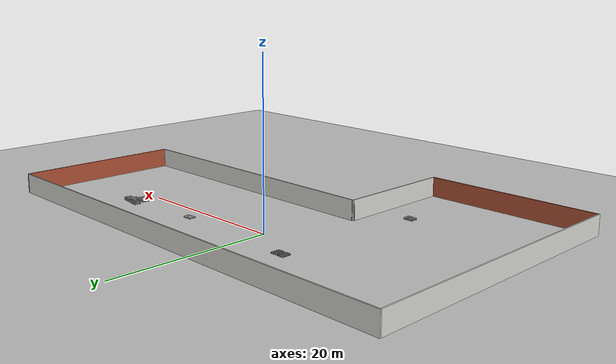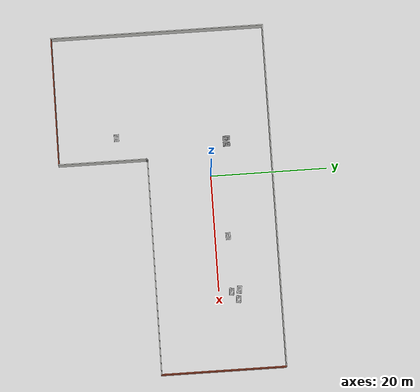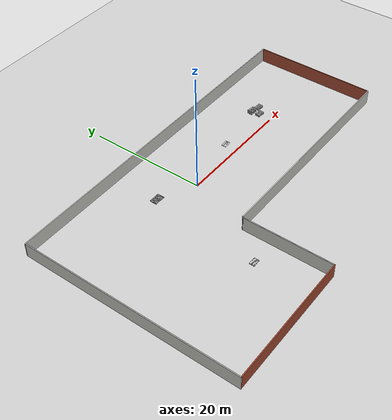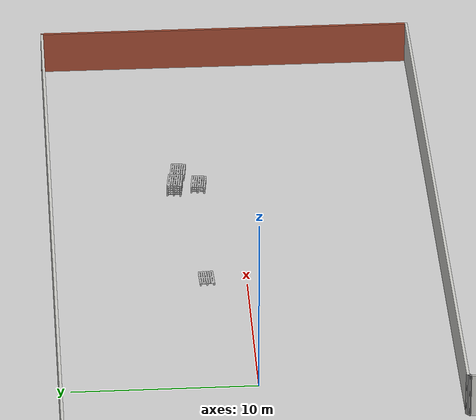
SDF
<sdf version="1.7">
 <world name="default">
  <light name="sun" type="directional">
   <pose>0 0 10 0 -0 0</pose>
   <diffuse>0.8 0.8 0.8 1</diffuse>
   <specular>0.2 0.2 0.2 1</specular>
   <attenuation>
    <range>1000</range>
    <constant>0.9</constant>
    <linear>0.01</linear>
    <quadratic>0.001</quadratic>
   </attenuation>
   <direction>-0.5 0.1 -0.9</direction>
   <spot><inner_angle>0</inner_angle><outer_angle>0</outer_angle><falloff>0</falloff></spot>
  </light>
  <model name="ground_plane">
   <static>1</static>
   <link name="link">
    <collision name="collision">
     <geometry><plane><normal>0 0 1</normal><size>100 100</size></plane></geometry>
     <surface><friction><ode><mu>100</mu><mu2>50</mu2></ode></friction></surface>
    </collision>
    <visual name="visual">
     <cast_shadows>0</cast_shadows>
     <geometry><plane><normal>0 0 1</normal><size>100 100</size></plane></geometry>
     <material>
      <script><uri>file://media/materials/scripts/gazebo.material</uri><name>Gazebo/Grey</name></script>
     </material>
    </visual>
   </link>
  </model>
  <gravity>0 0 -9.8</gravity>
  <magnetic_field>6e-06 2.3e-05 -4.2e-05</magnetic_field>
  <atmosphere type="adiabatic"/>
  <physics type="ode">
   <max_step_size>0.001</max_step_size>
   <real_time_factor>1</real_time_factor>
   <real_time_update_rate>1000</real_time_update_rate>
  </physics>
  <scene><ambient>0.4 0.4 0.4 1</ambient><background>0.7 0.7 0.7 1</background><shadows>1</shadows></scene>
  <audio><device>default</device></audio>
  <spherical_coordinates>
   <surface_model>EARTH_WGS84</surface_model>
   <latitude_deg>0</latitude_deg>
   <longitude_deg>0</longitude_deg>
   <elevation>0</elevation>
   <heading_deg>0</heading_deg>
  </spherical_coordinates>
  <model name="Versuchshalle">
   <pose>4.1658 -7.7147 0 0 -0 0</pose>
   <link name="Wall_41">
    <collision name="Wall_41_Collision">
     <geometry><box><size>37.25 0.15 2.5</size></box></geometry>
     <pose>0 0 1.25 0 -0 0</pose>
    </collision>
    <visual name="Wall_41_Visual">
     <pose>0 0 1.25 0 -0 0</pose>
     <geometry><box><size>37.25 0.15 2.5</size></box></geometry>
     <material>
      <script><uri>file://media/materials/scripts/gazebo.material</uri><name>Gazebo/CeilingTiled</name></script>
      <ambient>1 1 1 1</ambient>
     </material>
     <meta><layer>0</layer></meta>
    </visual>
    <pose>11.125 -3.05 0 0 -0 0</pose>
   </link>
   <link name="Wall_42">
    <collision name="Wall_42_Collision">
     <geometry><box><size>21.5 0.15 2.5</size></box></geometry>
     <pose>0 0 1.25 0 -0 0</pose>
    </collision>
    <visual name="Wall_42_Visual">
     <pose>0 0 1.25 0 -0 0</pose>
     <geometry><box><size>21.5 0.15 2.5</size></box></geometry>
     <material>
      <script><uri>file://media/materials/scripts/gazebo.material</uri><name>Gazebo/Bricks</name></script>
      <ambient>1 1 1 1</ambient>
     </material>
     <meta><layer>0</layer></meta>
    </visual>
    <pose>29.675 7.625 0 0 -0 1.5708</pose>
   </link>
   <link name="Wall_43">
    <collision name="Wall_43_Collision">
     <geometry><box><size>59.5 0.15 2.5</size></box></geometry>
     <pose>0 0 1.25 0 -0 0</pose>
    </collision>
    <visual name="Wall_43_Visual">
     <pose>0 0 1.25 0 -0 0</pose>
     <geometry><box><size>59.5 0.15 2.5</size></box></geometry>
     <material>
      <script><uri>file://media/materials/scripts/gazebo.material</uri><name>Gazebo/CeilingTiled</name></script>
      <ambient>1 1 1 1</ambient>
     </material>
     <meta><layer>0</layer></meta>
    </visual>
    <pose>0 18.3 0 0 -0 3.14159</pose>
   </link>
   <link name="Wall_44">
    <collision name="Wall_44_Collision">
     <geometry><box><size>36.75 0.15 2.5</size></box></geometry>
     <pose>0 0 1.25 0 -0 0</pose>
    </collision>
    <visual name="Wall_44_Visual">
     <pose>0 0 1.25 0 -0 0</pose>
     <geometry><box><size>36.75 0.15 2.5</size></box></geometry>
     <material>
      <script><uri>file://media/materials/scripts/gazebo.material</uri><name>Gazebo/CeilingTiled</name></script>
      <ambient>1 1 1 1</ambient>
     </material>
     <meta><layer>0</layer></meta>
    </visual>
    <pose>-29.675 0 0 0 -0 -1.5708</pose>
   </link>
   <link name="Wall_45">
    <collision name="Wall_45_Collision">
     <geometry><box><size>22.25 0.15 2.5</size></box></geometry>
     <pose>0 0 1.25 0 -0 0</pose>
    </collision>
    <visual name="Wall_45_Visual">
     <pose>0 0 1.25 0 -0 0</pose>
     <geometry><box><size>22.25 0.15 2.5</size></box></geometry>
     <material>
      <script><uri>file://media/materials/scripts/gazebo.material</uri><name>Gazebo/Bricks</name></script>
      <ambient>1 1 1 1</ambient>
     </material>
     <meta><layer>0</layer></meta>
    </visual>
    <pose>-18.625 -18.3 0 0 -0 0</pose>
   </link>
   <link name="Wall_46">
    <collision name="Wall_46_Collision">
     <geometry><box><size>15.25 0.15 2.5</size></box></geometry>
     <pose>0 0 1.25 0 -0 0</pose>
    </collision>
    <visual name="Wall_46_Visual">
     <pose>0 0 1.25 0 -0 0</pose>
     <geometry><box><size>15.25 0.15 2.5</size></box></geometry>
     <material>
      <script><uri>file://media/materials/scripts/gazebo.material</uri><name>Gazebo/CeilingTiled</name></script>
      <ambient>1 1 1 1</ambient>
     </material>
     <meta><layer>0</layer></meta>
    </visual>
    <pose>-7.575 -10.75 0 0 -0 1.5708</pose>
   </link>
   <link name="Wall_50">
    <collision name="Wall_50_Collision">
     <geometry><box><size>0.15 0.15 2.5</size></box></geometry>
     <pose>0 0 1.25 0 -0 0</pose>
    </collision>
    <visual name="Wall_50_Visual">
     <pose>0 0 1.25 0 -0 0</pose>
     <geometry><box><size>0.15 0.15 2.5</size></box></geometry>
     <material>
      <script><uri>file://media/materials/scripts/gazebo.material</uri><name>Gazebo/Grey</name></script>
      <ambient>1 1 1 1</ambient>
     </material>
     <meta><layer>0</layer></meta>
    </visual>
    <pose>-7.575 -3.2 0 0 -0 0</pose>
   </link>
   <link name="Wall_51">
    <collision name="Wall_51_Collision">
     <geometry><box><size>0.362132 0.15 2.5</size></box></geometry>
     <pose>0 0 1.25 0 -0 0</pose>
    </collision>
    <visual name="Wall_51_Visual">
     <pose>0 0 1.25 0 -0 0</pose>
     <geometry><box><size>0.362132 0.15 2.5</size></box></geometry>
     <material>
      <script><uri>file://media/materials/scripts/gazebo.material</uri><name>Gazebo/Grey</name></script>
      <ambient>1 1 1 1</ambient>
     </material>
     <meta><layer>0</layer></meta>
    </visual>
    <pose>-7.5 -3.125 0 0 -0 0.785398</pose>
   </link>
   <static>1</static>
  </model>
  <model name="euro_pallet">
   <link name="link">
    <inertial>
     <mass>20</mass>
     <inertia><ixx>2.43</ixx><ixy>0</ixy><ixz>0</ixz><iyy>1.1</iyy><iyz>0</iyz><izz>3.47</izz></inertia>
    </inertial>
    <collision name="collision">
     <pose>0 0 0.05 0 -0 0</pose>
     <geometry><mesh><uri>model://euro_pallet/meshes/pallet.dae</uri><scale>0.1 0.1 0.1</scale></mesh></geometry>
    </collision>
    <visual name="visual">
     <pose>0 0 0.05 0 -0 0</pose>
     <geometry><mesh><uri>model://euro_pallet/meshes/pallet.dae</uri><scale>0.1 0.1 0.1</scale></mesh></geometry>
    </visual>
   </link>
   <pose>-5.4437 3.05152 0.096317 -1e-06 2e-06 1.4e-05</pose>
  </model>
  <model name="euro_pallet_clone">
   <link name="link">
    <inertial>
     <mass>20</mass>
     <inertia><ixx>2.43</ixx><ixy>0</ixy><ixz>0</ixz><iyy>1.1</iyy><iyz>0</iyz><izz>3.47</izz></inertia>
    </inertial>
    <collision name="collision">
     <pose>0 0 0.05 0 -0 0</pose>
     <geometry><mesh><uri>model://euro_pallet/meshes/pallet.dae</uri><scale>0.1 0.1 0.1</scale></mesh></geometry>
    </collision>
    <visual name="visual">
     <pose>0 0 0.05 0 -0 0</pose>
     <geometry><mesh><uri>model://euro_pallet/meshes/pallet.dae</uri><scale>0.1 0.1 0.1</scale></mesh></geometry>
    </visual>
   </link>
   <pose>-6.46326 3.07091 0.096317 0 -0 0.001757</pose>
  </model>
  <model name="wooden_pallet_pile_5">
   <frame name="pallet_0::__model__" attached_to="pallet_0::link">
    <pose relative_to="__model__">0 0 0.02 0 -0 0</pose>
   </frame>
   <link name="pallet_0::link">
    <pose relative_to="pallet_0::__model__">0 0 0 1.57 -0 1.57</pose>
    <inertial>
     <mass>20</mass>
     <inertia><ixx>2.43</ixx><ixy>0</ixy><ixz>0</ixz><iyy>1.1</iyy><iyz>0</iyz><izz>3.47</izz></inertia>
    </inertial>
    <collision name="collision">
     <pose>0 0 0.05 0 -0 0</pose>
     <geometry>
      <mesh><scale>0.25 0.25 0.25</scale><uri>model://wooden_pallet/meshes/pallet.obj</uri></mesh>
     </geometry>
    </collision>
    <visual name="visual">
     <pose>0 0 0.05 0 -0 0</pose>
     <geometry>
      <mesh><scale>0.25 0.25 0.25</scale><uri>model://wooden_pallet/meshes/pallet.obj</uri></mesh>
     </geometry>
    </visual>
   </link>
   <frame name="pallet_1::__model__" attached_to="pallet_1::link">
    <pose relative_to="__model__">0 0 0.145 0 -0 0</pose>
   </frame>
   <link name="pallet_1::link">
    <pose relative_to="pallet_1::__model__">0 0 0 1.57 -0 1.57</pose>
    <inertial>
     <mass>20</mass>
     <inertia><ixx>2.43</ixx><ixy>0</ixy><ixz>0</ixz><iyy>1.1</iyy><iyz>0</iyz><izz>3.47</izz></inertia>
    </inertial>
    <collision name="collision">
     <pose>0 0 0.05 0 -0 0</pose>
     <geometry>
      <mesh><scale>0.25 0.25 0.25</scale><uri>model://wooden_pallet/meshes/pallet.obj</uri></mesh>
     </geometry>
    </collision>
    <visual name="visual">
     <pose>0 0 0.05 0 -0 0</pose>
     <geometry>
      <mesh><scale>0.25 0.25 0.25</scale><uri>model://wooden_pallet/meshes/pallet.obj</uri></mesh>
     </geometry>
    </visual>
   </link>
   <frame name="pallet_2::__model__" attached_to="pallet_2::link">
    <pose relative_to="__model__">0 0 0.29 0 -0 0</pose>
   </frame>
   <link name="pallet_2::link">
    <pose relative_to="pallet_2::__model__">0 0 0 1.57 -0 1.57</pose>
    <inertial>
     <mass>20</mass>
     <inertia><ixx>2.43</ixx><ixy>0</ixy><ixz>0</ixz><iyy>1.1</iyy><iyz>0</iyz><izz>3.47</izz></inertia>
    </inertial>
    <collision name="collision">
     <pose>0 0 0.05 0 -0 0</pose>
     <geometry>
      <mesh><scale>0.25 0.25 0.25</scale><uri>model://wooden_pallet/meshes/pallet.obj</uri></mesh>
     </geometry>
    </collision>
    <visual name="visual">
     <pose>0 0 0.05 0 -0 0</pose>
     <geometry>
      <mesh><scale>0.25 0.25 0.25</scale><uri>model://wooden_pallet/meshes/pallet.obj</uri></mesh>
     </geometry>
    </visual>
   </link>
   <frame name="pallet_3::__model__" attached_to="pallet_3::link">
    <pose relative_to="__model__">0 0 0.435 0 -0 0</pose>
   </frame>
   <link name="pallet_3::link">
    <pose relative_to="pallet_3::__model__">0 0 0 1.57 -0 1.57</pose>
    <inertial>
     <mass>20</mass>
     <inertia><ixx>2.43</ixx><ixy>0</ixy><ixz>0</ixz><iyy>1.1</iyy><iyz>0</iyz><izz>3.47</izz></inertia>
    </inertial>
    <collision name="collision">
     <pose>0 0 0.05 0 -0 0</pose>
     <geometry>
      <mesh><scale>0.25 0.25 0.25</scale><uri>model://wooden_pallet/meshes/pallet.obj</uri></mesh>
     </geometry>
    </collision>
    <visual name="visual">
     <pose>0 0 0.05 0 -0 0</pose>
     <geometry>
      <mesh><scale>0.25 0.25 0.25</scale><uri>model://wooden_pallet/meshes/pallet.obj</uri></mesh>
     </geometry>
    </visual>
   </link>
   <frame name="pallet_4::__model__" attached_to="pallet_4::link">
    <pose relative_to="__model__">0 0 0.57 0 -0 0</pose>
   </frame>
   <link name="pallet_4::link">
    <pose relative_to="pallet_4::__model__">0 0 0 1.57 -0 1.57</pose>
    <inertial>
     <mass>20</mass>
     <inertia><ixx>2.43</ixx><ixy>0</ixy><ixz>0</ixz><iyy>1.1</iyy><iyz>0</iyz><izz>3.47</izz></inertia>
    </inertial>
    <collision name="collision">
     <pose>0 0 0.05 0 -0 0</pose>
     <geometry>
      <mesh><scale>0.25 0.25 0.25</scale><uri>model://wooden_pallet/meshes/pallet.obj</uri></mesh>
     </geometry>
    </collision>
    <visual name="visual">
     <pose>0 0 0.05 0 -0 0</pose>
     <geometry>
      <mesh><scale>0.25 0.25 0.25</scale><uri>model://wooden_pallet/meshes/pallet.obj</uri></mesh>
     </geometry>
    </visual>
   </link>
   <joint name="link0_link1" type="fixed">
    <parent>pallet_0::link</parent>
    <child>pallet_1::link</child>
    <axis><xyz expressed_in="__model__">0 0 1</xyz><limit><lower>-1e+16</lower><upper>1e+16</upper></limit></axis>
   </joint>
   <joint name="link1_link2" type="fixed">
    <parent>pallet_1::link</parent>
    <child>pallet_2::link</child>
    <axis><xyz expressed_in="__model__">0 0 1</xyz><limit><lower>-1e+16</lower><upper>1e+16</upper></limit></axis>
   </joint>
   <joint name="link2_link3" type="fixed">
    <parent>pallet_2::link</parent>
    <child>pallet_3::link</child>
    <axis><xyz expressed_in="__model__">0 0 1</xyz><limit><lower>-1e+16</lower><upper>1e+16</upper></limit></axis>
   </joint>
   <joint name="link3_link4" type="fixed">
    <parent>pallet_3::link</parent>
    <child>pallet_4::link</child>
    <axis><xyz expressed_in="__model__">0 0 1</xyz><limit><lower>-1e+16</lower><upper>1e+16</upper></limit></axis>
   </joint>
   <pose>19.9179 3.5155 0.097434 -0.000734 0.000796 -0.120143</pose>
  </model>
  <model name="wooden_pallet_pile_3">
   <frame name="pallet_0::__model__" attached_to="pallet_0::link">
    <pose relative_to="__model__">0 0 0.04 0 -0 0</pose>
   </frame>
   <link name="pallet_0::link">
    <pose relative_to="pallet_0::__model__">0 0 0 1.57 -0 1.57</pose>
    <inertial>
     <mass>20</mass>
     <inertia><ixx>2.43</ixx><ixy>0</ixy><ixz>0</ixz><iyy>1.1</iyy><iyz>0</iyz><izz>3.47</izz></inertia>
    </inertial>
    <collision name="collision">
     <pose>0 0 0.05 0 -0 0</pose>
     <geometry>
      <mesh><scale>0.25 0.25 0.25</scale><uri>model://wooden_pallet/meshes/pallet.obj</uri></mesh>
     </geometry>
    </collision>
    <visual name="visual">
     <pose>0 0 0.05 0 -0 0</pose>
     <geometry>
      <mesh><scale>0.25 0.25 0.25</scale><uri>model://wooden_pallet/meshes/pallet.obj</uri></mesh>
     </geometry>
    </visual>
   </link>
   <frame name="pallet_1::__model__" attached_to="pallet_1::link">
    <pose relative_to="__model__">0 0 0.145 0 -0 0</pose>
   </frame>
   <link name="pallet_1::link">
    <pose relative_to="pallet_1::__model__">0 0 0 1.57 -0 1.57</pose>
    <inertial>
     <mass>20</mass>
     <inertia><ixx>2.43</ixx><ixy>0</ixy><ixz>0</ixz><iyy>1.1</iyy><iyz>0</iyz><izz>3.47</izz></inertia>
    </inertial>
    <collision name="collision">
     <pose>0 0 0.05 0 -0 0</pose>
     <geometry>
      <mesh><scale>0.25 0.25 0.25</scale><uri>model://wooden_pallet/meshes/pallet.obj</uri></mesh>
     </geometry>
    </collision>
    <visual name="visual">
     <pose>0 0 0.05 0 -0 0</pose>
     <geometry>
      <mesh><scale>0.25 0.25 0.25</scale><uri>model://wooden_pallet/meshes/pallet.obj</uri></mesh>
     </geometry>
    </visual>
   </link>
   <frame name="pallet_2::__model__" attached_to="pallet_2::link">
    <pose relative_to="__model__">0 0 0.29 0 -0 0</pose>
   </frame>
   <link name="pallet_2::link">
    <pose relative_to="pallet_2::__model__">0 0 0 1.57 -0 1.57</pose>
    <inertial>
     <mass>20</mass>
     <inertia><ixx>2.43</ixx><ixy>0</ixy><ixz>0</ixz><iyy>1.1</iyy><iyz>0</iyz><izz>3.47</izz></inertia>
    </inertial>
    <collision name="collision">
     <pose>0 0 0.05 0 -0 0</pose>
     <geometry>
      <mesh><scale>0.25 0.25 0.25</scale><uri>model://wooden_pallet/meshes/pallet.obj</uri></mesh>
     </geometry>
    </collision>
    <visual name="visual">
     <pose>0 0 0.05 0 -0 0</pose>
     <geometry>
      <mesh><scale>0.25 0.25 0.25</scale><uri>model://wooden_pallet/meshes/pallet.obj</uri></mesh>
     </geometry>
    </visual>
   </link>
   <joint name="link0_link1" type="fixed">
    <parent>pallet_0::link</parent>
    <child>pallet_1::link</child>
    <axis><xyz expressed_in="__model__">0 0 1</xyz><limit><lower>-1e+16</lower><upper>1e+16</upper></limit></axis>
   </joint>
   <joint name="link1_link2" type="fixed">
    <parent>pallet_1::link</parent>
    <child>pallet_2::link</child>
    <axis><xyz expressed_in="__model__">0 0 1</xyz><limit><lower>-1e+16</lower><upper>1e+16</upper></limit></axis>
   </joint>
   <pose>21.5344 3.27803 0.07743 -0.000724 0.000798 -0.118573</pose>
  </model>
  <model name="wooden_pallet_pile_3_0">
   <frame name="pallet_0::__model__" attached_to="pallet_0::link">
    <pose relative_to="__model__">0 0 0.04 0 -0 0</pose>
   </frame>
   <link name="pallet_0::link">
    <pose relative_to="pallet_0::__model__">0 0 0 1.57 -0 1.57</pose>
    <inertial>
     <mass>20</mass>
     <inertia><ixx>2.43</ixx><ixy>0</ixy><ixz>0</ixz><iyy>1.1</iyy><iyz>0</iyz><izz>3.47</izz></inertia>
    </inertial>
    <collision name="collision">
     <pose>0 0 0.05 0 -0 0</pose>
     <geometry>
      <mesh><scale>0.25 0.25 0.25</scale><uri>model://wooden_pallet/meshes/pallet.obj</uri></mesh>
     </geometry>
    </collision>
    <visual name="visual">
     <pose>0 0 0.05 0 -0 0</pose>
     <geometry>
      <mesh><scale>0.25 0.25 0.25</scale><uri>model://wooden_pallet/meshes/pallet.obj</uri></mesh>
     </geometry>
    </visual>
   </link>
   <frame name="pallet_1::__model__" attached_to="pallet_1::link">
    <pose relative_to="__model__">0 0 0.145 0 -0 0</pose>
   </frame>
   <link name="pallet_1::link">
    <pose relative_to="pallet_1::__model__">0 0 0 1.57 -0 1.57</pose>
    <inertial>
     <mass>20</mass>
     <inertia><ixx>2.43</ixx><ixy>0</ixy><ixz>0</ixz><iyy>1.1</iyy><iyz>0</iyz><izz>3.47</izz></inertia>
    </inertial>
    <collision name="collision">
     <pose>0 0 0.05 0 -0 0</pose>
     <geometry>
      <mesh><scale>0.25 0.25 0.25</scale><uri>model://wooden_pallet/meshes/pallet.obj</uri></mesh>
     </geometry>
    </collision>
    <visual name="visual">
     <pose>0 0 0.05 0 -0 0</pose>
     <geometry>
      <mesh><scale>0.25 0.25 0.25</scale><uri>model://wooden_pallet/meshes/pallet.obj</uri></mesh>
     </geometry>
    </visual>
   </link>
   <frame name="pallet_2::__model__" attached_to="pallet_2::link">
    <pose relative_to="__model__">0 0 0.29 0 -0 0</pose>
   </frame>
   <link name="pallet_2::link">
    <pose relative_to="pallet_2::__model__">0 0 0 1.57 -0 1.57</pose>
    <inertial>
     <mass>20</mass>
     <inertia><ixx>2.43</ixx><ixy>0</ixy><ixz>0</ixz><iyy>1.1</iyy><iyz>0</iyz><izz>3.47</izz></inertia>
    </inertial>
    <collision name="collision">
     <pose>0 0 0.05 0 -0 0</pose>
     <geometry>
      <mesh><scale>0.25 0.25 0.25</scale><uri>model://wooden_pallet/meshes/pallet.obj</uri></mesh>
     </geometry>
    </collision>
    <visual name="visual">
     <pose>0 0 0.05 0 -0 0</pose>
     <geometry>
      <mesh><scale>0.25 0.25 0.25</scale><uri>model://wooden_pallet/meshes/pallet.obj</uri></mesh>
     </geometry>
    </visual>
   </link>
   <joint name="link0_link1" type="fixed">
    <parent>pallet_0::link</parent>
    <child>pallet_1::link</child>
    <axis><xyz expressed_in="__model__">0 0 1</xyz><limit><lower>-1e+16</lower><upper>1e+16</upper></limit></axis>
   </joint>
   <joint name="link1_link2" type="fixed">
    <parent>pallet_1::link</parent>
    <child>pallet_2::link</child>
    <axis><xyz expressed_in="__model__">0 0 1</xyz><limit><lower>-1e+16</lower><upper>1e+16</upper></limit></axis>
   </joint>
   <pose>20.1635 2.17047 0.077436 -0.000736 0.000797 -0.108494</pose>
  </model>
  <model name="wooden_pallet_pile_2">
   <frame name="pallet_0::__model__" attached_to="pallet_0::link">
    <pose relative_to="__model__">0 0 0.04 0 -0 0</pose>
   </frame>
   <link name="pallet_0::link">
    <pose relative_to="pallet_0::__model__">0 0 0 1.57 -0 1.57</pose>
    <inertial>
     <mass>20</mass>
     <inertia><ixx>2.43</ixx><ixy>0</ixy><ixz>0</ixz><iyy>1.1</iyy><iyz>0</iyz><izz>3.47</izz></inertia>
    </inertial>
    <collision name="collision">
     <pose>0 0 0.05 0 -0 0</pose>
     <geometry>
      <mesh><scale>0.25 0.25 0.25</scale><uri>model://wooden_pallet/meshes/pallet.obj</uri></mesh>
     </geometry>
    </collision>
    <visual name="visual">
     <pose>0 0 0.05 0 -0 0</pose>
     <geometry>
      <mesh><scale>0.25 0.25 0.25</scale><uri>model://wooden_pallet/meshes/pallet.obj</uri></mesh>
     </geometry>
    </visual>
   </link>
   <frame name="pallet_1::__model__" attached_to="pallet_1::link">
    <pose relative_to="__model__">0 0 0.15 0 -0 0</pose>
   </frame>
   <link name="pallet_1::link">
    <pose relative_to="pallet_1::__model__">0 0 0 1.57 -0 1.57</pose>
    <inertial>
     <mass>20</mass>
     <inertia><ixx>2.43</ixx><ixy>0</ixy><ixz>0</ixz><iyy>1.1</iyy><iyz>0</iyz><izz>3.47</izz></inertia>
    </inertial>
    <collision name="collision">
     <pose>0 0 0.05 0 -0 0</pose>
     <geometry>
      <mesh><scale>0.25 0.25 0.25</scale><uri>model://wooden_pallet/meshes/pallet.obj</uri></mesh>
     </geometry>
    </collision>
    <visual name="visual">
     <pose>0 0 0.05 0 -0 0</pose>
     <geometry>
      <mesh><scale>0.25 0.25 0.25</scale><uri>model://wooden_pallet/meshes/pallet.obj</uri></mesh>
     </geometry>
    </visual>
   </link>
   <joint name="link_link" type="fixed">
    <parent>pallet_0::link</parent>
    <child>pallet_1::link</child>
    <axis><xyz expressed_in="__model__">0 0 1</xyz><limit><lower>-1e+16</lower><upper>1e+16</upper></limit></axis>
   </joint>
   <pose>-7.81229 -15.8627 0.077436 -0.000737 0.000797 -0.000224</pose>
  </model>
  <model name="wooden pallet">
   <link name="link">
    <pose>0 0 0 1.57 -0 1.57</pose>
    <inertial>
     <mass>20</mass>
     <inertia><ixx>2.43</ixx><ixy>0</ixy><ixz>0</ixz><iyy>1.1</iyy><iyz>0</iyz><izz>3.47</izz></inertia>
    </inertial>
    <collision name="collision">
     <pose>0 0 0.05 0 -0 0</pose>
     <geometry>
      <mesh><scale>0.25 0.25 0.25</scale><uri>model://wooden_pallet/meshes/pallet.obj</uri></mesh>
     </geometry>
    </collision>
    <visual name="visual">
     <pose>0 0 0.05 0 -0 0</pose>
     <geometry>
      <mesh><scale>0.25 0.25 0.25</scale><uri>model://wooden_pallet/meshes/pallet.obj</uri></mesh>
     </geometry>
    </visual>
   </link>
   <pose>10.5151 2.22432 0.117435 -0.000737 0.000797 0.043248</pose>
  </model>
 </world>
</sdf>
